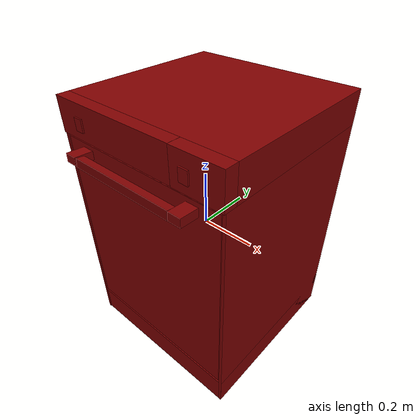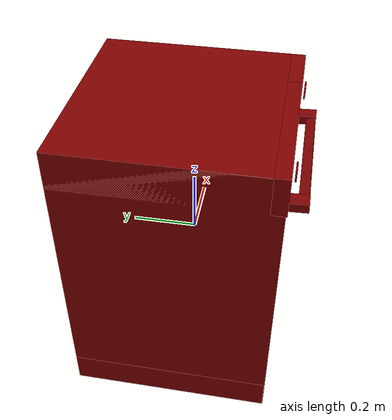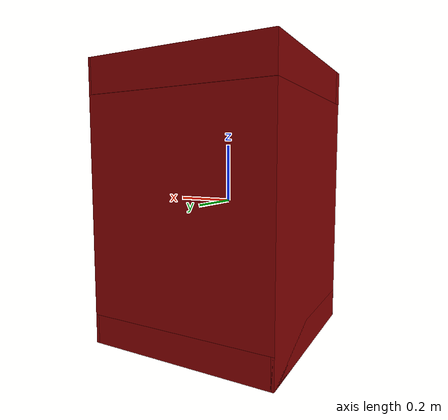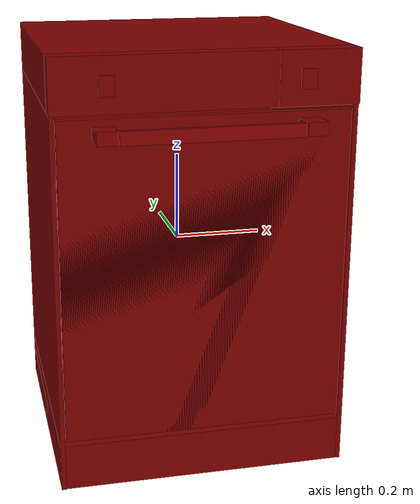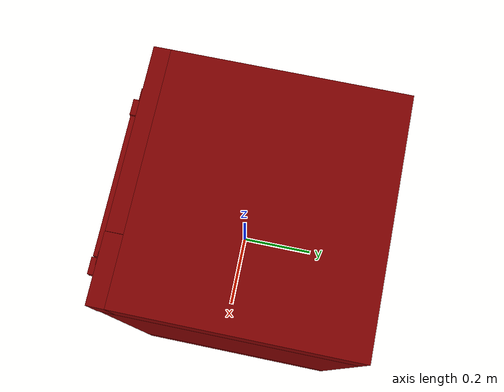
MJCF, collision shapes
<?xml version='1.0' encoding='UTF-8'?>
<mujoco model="model">
  <option timestep="0.002" gravity="0.0 0.0 -9.81"/>
  <compiler angle="radian"/>
  <asset>
    <mesh file="visuals/button_lock.obj" name="button_lock_vis"/>
    <mesh file="visuals/button_power.obj" name="button_power_vis"/>
    <mesh file="visuals/Body001.obj" name="Body001_vis"/>
    <mesh file="visuals/door.obj" name="door_vis"/>
    <mesh file="visuals/rack0.obj" name="rack0_vis"/>
    <mesh file="visuals/rack1.obj" name="rack1_vis"/>
    <texture file="visuals/T_BC001.png" name="Body001_material" type="2d"/>
    <material name="Body001_material" rgba="1 1 1 1.0" texture="Body001_material" shininess="0.6073972582817078" specular="1"/>
    <texture file="visuals/T_BC001.png" name="button_lock_material" type="2d"/>
    <material name="button_lock_material" rgba="1 1 1 1.0" texture="button_lock_material" shininess="0.6073972582817078" specular="0.3103448502657381"/>
    <texture file="visuals/T_BC001.png" name="button_power_material" type="2d"/>
    <material name="button_power_material" rgba="1 1 1 1.0" texture="button_power_material" shininess="0.6073972582817078" specular="0.3103448502657381"/>
    <texture file="visuals/T_BC001.png" name="door_material" type="2d"/>
    <material name="door_material" rgba="1 1 1 1.0" texture="door_material" shininess="0.6073972582817078" specular="1"/>
    <texture file="visuals/T_BC001.png" name="rack0_material" type="2d"/>
    <material name="rack0_material" rgba="1 1 1 1.0" texture="rack0_material" shininess="0.6073972582817078" specular="2"/>
    <texture file="visuals/T_BC001.png" name="rack1_material" type="2d"/>
    <material name="rack1_material" rgba="1 1 1 1.0" texture="rack1_material" shininess="0.6073972582817078" specular="2"/>
  </asset>
  <default>
    <default class="visual">
      <geom conaffinity="0" contype="0" group="1" type="mesh"/>
    </default>
    <default class="collision">
      <geom group="0" rgba="0.5 0 0 0.5"/>
    </default>
    <default class="spawn">
      <geom group="0" rgba="1 1 1 0.5" contype="0" conaffinity="0"/>
      <site group="0" rgba="1 1 1 0.5"/>
    </default>
    <default class="region">
      <geom group="1" conaffinity="0" contype="0" rgba="0 1 0 0"/>
    </default>
  </default>
  <worldbody>
    <body>
      <body name="object">
        <geom mesh="Body001_vis" type="mesh" solimp="0.998 0.998 0.001" solref="0.001 1" friction="0.95 0.3 0.1" class="visual" material="Body001_material"/>
        <geom class="collision" type="box" pos="0.3195469081401825 0.03049352578818798 -0.0008652372634969652" size="0.005452887155115604 0.3193228244781494 0.4755246639251709" quat="1.0 0.0 0.0 0.0"/>
        <geom class="collision" type="box" pos="-0.3197232484817505 0.02959943749010563 -0.0008680850733071566" size="0.005276618991047144 0.3202167749404907 0.4755217730998993" quat="1.0 0.0 0.0 0.0"/>
        <geom class="collision" type="box" pos="-3.842194473691052e-08 0.049297429621219635 0.417580246925354" size="0.3249998986721039 0.3005189597606659 0.05880957096815109" quat="1.0 0.0 0.0 0.0"/>
        <geom class="collision" type="box" pos="0.23768563568592072 -0.2731601893901825 0.41758012771606445" size="0.08731427043676376 0.022130848839879036 0.05880975350737572" quat="1.0 0.0 0.0 0.0"/>
        <geom class="collision" type="box" pos="-0.0875551849603653 -0.272649884223938 0.4175802767276764" size="0.23744478821754456 0.021620552986860275 0.05880960077047348" quat="1.0 0.0 0.0 0.0"/>
        <geom class="collision" type="box" pos="-1.5806563169462606e-08 0.030639229342341423 -0.42419469356536865" size="0.3249998688697815 0.3191770315170288 0.052195172756910324" quat="1.0 0.0 0.0 0.0"/>
        <geom class="collision" type="box" pos="-3.550383098627208e-08 0.30669325590133667 -0.0094219371676445" size="0.3249998092651367 0.04312392696738243 0.36727073788642883" quat="1.0 0.0 0.0 0.0"/>
        <geom class="collision" type="box" pos="-0.31543615460395813 0.02117220312356949 0.14838247001171112" size="0.006650563795119524 0.19013711810112 0.007469887845218182" quat="1.0 0.0 0.0 0.0"/>
        <geom class="collision" type="box" pos="-0.3152025043964386 0.02117220312356949 -0.17745603621006012" size="0.006381597835570574 0.19013711810112 0.007469888776540756" quat="1.0 0.0 0.0 0.0"/>
        <geom class="collision" type="box" pos="0.31488972902297974 0.02117220312356949 -0.17745603621006012" size="0.006315228529274464 0.19013711810112 0.007469888776540756" quat="1.0 0.0 0.0 0.0"/>
        <geom class="collision" type="box" pos="0.3157113492488861 0.02117220312356949 0.14838247001171112" size="0.007136833854019642 0.19013711810112 0.007469887845218182" quat="1.0 0.0 0.0 0.0"/>
        <body name="button_lock">
          <joint axis="0.0 1.0 0.0" pos="-0.21002115309238434 -0.3024997115135193 0.4177264869213104" limited="true" name="button_lock_joint" range="0.0 0.003" type="slide" damping="1" frictionloss="1" armature=".01" stiffness="4" springref="-1"/>
          <geom mesh="button_lock_vis" type="mesh" solimp="0.998 0.998 0.001" solref="0.001 1" friction="0.95 0.3 0.1" class="visual" material="button_lock_material"/>
          <geom class="collision" type="box" pos="-0.21002115309238434 -0.3045172095298767 0.4174860715866089" size="0.016192251816391945 0.0023901311215013266 0.021154846996068954" quat="1.0 0.0 0.0 0.0"/>
        </body>
        <body name="button_power">
          <joint axis="0.0 1.0 0.0" pos="0.2092234045267105 -0.3024997115135193 0.4177264869213104" limited="true" name="button_power_joint" range="0.0 0.003" type="slide" damping="1" frictionloss="1" armature=".01" stiffness="4" springref="-1"/>
          <geom mesh="button_power_vis" type="mesh" solimp="0.998 0.998 0.001" solref="0.001 1" friction="0.95 0.3 0.1" class="visual" material="button_power_material"/>
          <geom class="collision" type="box" pos="0.2092234045267105 -0.3045172095298767 0.4174860715866089" size="0.016192251816391945 0.0023901311215013266 0.021154848858714104" quat="1.0 0.0 0.0 0.0"/>
        </body>
        <body name="door">
          <joint axis="1.0 0.0 0.0" pos="-9.046045306604356e-05 -0.2885375516489148 -0.3612375552766025" limited="true" name="door_joint" range="0.0 0.6235987755982988" type="hinge" damping="1" frictionloss="10" armature="1" stiffness="2"/>
          <geom mesh="door_vis" type="mesh" solimp="0.998 0.998 0.001" solref="0.001 1" friction="0.95 0.3 0.1" class="visual" material="door_material"/>
          <geom class="collision" type="box" pos="-9.046045306604356e-05 -0.2785291373729706 -0.006001144181936979" size="0.3114652633666992 0.010008400306105614 0.3552364110946655" quat="1.0 0.0 0.0 0.0"/>
          <geom class="collision" type="box" pos="-0.000379952194634825 -0.334861159324646 0.31872302293777466" size="0.19219963252544403 0.014004869386553764 0.014333692379295826" quat="0.9979648590087891 -0.06376658380031586 1.4159025907360036e-17 -2.6513886195414377e-25" name="door_handle_main"/>
          <geom class="collision" type="box" pos="-0.21679207682609558 -0.31781715154647827 0.32058584690093994" size="0.014369867742061615 0.03252572938799858 0.022114161401987076" quat="0.013899299316108227 0.7069703340530396 -0.015007845126092434 -0.7069473266601562"/>
          <geom class="collision" type="box" pos="0.2169979065656662 -0.31771621108055115 0.32061833143234253" size="0.014333294704556465 0.032423343509435654 0.022083843126893044" quat="0.013899299316108227 0.7069703340530396 -0.015007845126092434 -0.7069473266601562"/>
          <geom class="collision" type="box" pos="-9.046045306604356e-05 -0.2853344976902008 -0.006001144181936979" size="0.31146734952926636 0.0032030539587140083 0.3552364110946655" quat="1.0 0.0 0.0 0.0" name="door_main"/>
        </body>
        <body name="rack0">
          <geom class="region" name="reg_rack0" type="box" pos="0.002743169665336609 -0.004573509097099304 -0.10494159907102585" size="0.25864910876750946 0.21195538139343262 0.15367647057771683"/>
          <joint axis="0.0 -1.0 0.0" pos="-0.0006143888458609581 -0.006038481369614601 -0.18971765041351318" limited="true" name="rack0_joint" range="0.0 0.081" type="slide" damping="1" frictionloss="1" armature=".01" stiffness="0.05"/>
          <geom mesh="rack0_vis" type="mesh" solimp="0.998 0.998 0.001" solref="0.001 1" friction="0.95 0.3 0.1" class="visual" material="rack0_material"/>
          <geom class="collision" type="box" pos="0.0016660188557580113 0.020785540342330933 -0.26642823219299316" size="0.29012924432754517 0.21466881036758423 0.003376383800059557" quat="1.0 0.0 0.0 0.0"/>
          <geom class="collision" type="box" pos="-0.2863785922527313 0.020667903125286102 -0.2529175877571106" size="0.005731178447604179 0.21478644013404846 0.016833750531077385" quat="1.0 0.0 0.0 0.0"/>
          <geom class="collision" type="box" pos="-0.29412487149238586 0.020667903125286102 -0.22640131413936615" size="0.016833651810884476 0.21478644013404846 0.005645910743623972" quat="0.4823550879955292 -5.884757925400663e-08 -0.8759757876396179 -8.529080730568239e-08"/>
          <geom class="collision" type="box" pos="-0.2998568117618561 0.02111320197582245 -0.16304901242256165" size="0.006188823841512203 0.2143411785364151 0.052745699882507324" quat="1.0 0.0 0.0 0.0"/>
          <geom class="collision" type="box" pos="-0.3085080683231354 0.02140076458454132 -0.18778908252716064" size="0.002633859170600772 0.1918901950120926 0.0023234589025378227" quat="1.0 0.0 0.0 0.0"/>
          <geom class="collision" type="box" pos="-0.3085080683231354 0.02140076458454132 -0.16727127134799957" size="0.002633859170600772 0.1918901950120926 0.0023234582040458918" quat="1.0 0.0 0.0 0.0"/>
          <geom class="collision" type="box" pos="0.000577675411477685 -0.03990449011325836 -0.26642823219299316" size="0.20991303026676178 0.21466881036758423 0.003376383800059557" quat="1.0 0.0 0.0 0.0"/>
          <geom class="collision" type="box" pos="-0.2778160572052002 -0.21964961290359497 -0.162726029753685" size="0.05306830257177353 0.039873234927654266 0.0033764373511075974" quat="0.6597546935081482 0.25440871715545654 -0.6597546339035034 0.25440868735313416"/>
          <geom class="collision" type="box" pos="-0.0009126450167968869 -0.24716416001319885 -0.18804959952831268" size="0.2089340090751648 0.006340378429740667 0.0801505297422409" quat="1.0 0.0 0.0 0.0"/>
          <geom class="collision" type="box" pos="-0.21426835656166077 -0.24949386715888977 -0.162726029753685" size="0.0398864820599556 0.003536420641466975 0.05306831747293472" quat="1.0 0.0 0.0 0.0"/>
          <geom class="collision" type="box" pos="-0.2671022117137909 -0.2161390334367752 -0.1873312145471573" size="0.01805032417178154 0.04534149542450905 0.0033764371182769537" quat="0.6498845815658569 0.2786577641963959 -0.6498844027519226 0.2786576747894287"/>
          <geom class="collision" type="box" pos="-0.3047977089881897 0.02111320197582245 -0.11315758526325226" size="0.005780012346804142 0.2143411785364151 0.0037815244868397713" quat="1.0 0.0 0.0 0.0"/>
          <geom class="collision" type="box" pos="-0.19273234903812408 0.23852188885211945 -0.11315757036209106" size="0.11591189354658127 0.005780050065368414 0.0037815424147993326" quat="1.0 0.0 0.0 0.0"/>
          <geom class="collision" type="box" pos="0.00275445100851357 0.21388477087020874 -0.11315755546092987" size="0.05314372479915619 0.0057800281792879105 0.0037815228570252657" quat="1.0 0.0 0.0 0.0"/>
          <geom class="collision" type="box" pos="-0.06510243564844131 0.22636380791664124 -0.11315755546092987" size="0.0037815060932189226 0.021321946755051613 0.005779982544481754" quat="0.6408565044403076 0.29883623123168945 -0.6408563256263733 0.2988361418247223"/>
          <geom class="collision" type="box" pos="0.06482300907373428 0.22507742047309875 -0.11315755546092987" size="0.0037815060932189226 0.021321943029761314 0.005779982544481754" quat="0.298836350440979 0.6408564448356628 -0.29883626103401184 0.6408562660217285"/>
          <geom class="collision" type="box" pos="0.19270308315753937 0.23852179944515228 -0.11315764486789703" size="0.11591189354658127 0.005780045408755541 0.0037815424147993326" quat="1.0 0.0 0.0 0.0"/>
          <geom class="collision" type="box" pos="0.30326780676841736 0.02111320197582245 -0.11315758526325226" size="0.005780053324997425 0.2143411785364151 0.003781520063057542" quat="1.0 0.0 0.0 0.0"/>
          <geom class="collision" type="box" pos="0.3073371648788452 0.02140076458454132 -0.16727127134799957" size="0.002992909401655197 0.1918901950120926 0.002323453314602375" quat="1.0 0.0 0.0 0.0"/>
          <geom class="collision" type="box" pos="0.3073371648788452 0.02140076458454132 -0.18778908252716064" size="0.002992909401655197 0.1918901950120926 0.0023234528489410877" quat="1.0 0.0 0.0 0.0"/>
          <geom class="collision" type="box" pos="0.29832690954208374 0.02111320197582245 -0.16304901242256165" size="0.006188864819705486 0.2143411785364151 0.05274546518921852" quat="1.0 0.0 0.0 0.0"/>
          <geom class="collision" type="box" pos="0.2925949692726135 0.020667903125286102 -0.22640131413936615" size="0.016833651810884476 0.21478644013404846 0.005645910277962685" quat="1.44719962236195e-07 0.48235517740249634 1.7913136218794534e-07 -0.8759757280349731"/>
          <geom class="collision" type="box" pos="0.284848690032959 0.020667903125286102 -0.2529175877571106" size="0.0057312194257974625 0.21478644013404846 0.016833683475852013" quat="1.0 0.0 0.0 0.0"/>
          <geom class="collision" type="box" pos="0.2706979513168335 -0.2174314558506012 -0.18809129297733307" size="0.01805032417178154 0.04534149914979935 0.0033764373511075974" quat="0.24159552156925201 -0.6645538210868835 0.24159541726112366 0.6645535826683044"/>
          <geom class="collision" type="box" pos="0.2153654247522354 -0.24949386715888977 -0.162726029753685" size="0.0398864820599556 0.0035363936331123114 0.05306831747293472" quat="1.0 0.0 0.0 0.0"/>
          <geom class="collision" type="box" pos="0.27891311049461365 -0.21964961290359497 -0.162726029753685" size="0.05306830257177353 0.039873234927654266 0.0033764373511075974" quat="0.25440868735313416 -0.6597546935081482 0.25440865755081177 0.6597546339035034"/>
          <geom class="collision" type="box" pos="0.27146536111831665 -0.21916376054286957 -0.11315758526325226" size="0.0037815060932189226 0.04157046601176262 0.005780006293207407" quat="0.23578761518001556 -0.6666365265846252 0.23578760027885437 0.6666364669799805"/>
          <geom class="collision" type="box" pos="-0.19533056020736694 0.2367458939552307 -0.1882169395685196" size="0.11310506612062454 0.006188844796270132 0.07550069689750671" quat="1.0 0.0 0.0 0.0"/>
          <geom class="collision" type="box" pos="0.0023002009838819504 0.2143627107143402 -0.1882169395685196" size="0.05345770716667175 0.006188835483044386 0.07550068944692612" quat="1.0 0.0 0.0 0.0"/>
          <geom class="collision" type="box" pos="-0.06510329246520996 0.22687402367591858 -0.1882169395685196" size="0.07550067454576492 0.021698355674743652 0.006188809871673584" quat="0.6344220042228699 0.31226423382759094 -0.634421706199646 0.312264084815979"/>
          <geom class="collision" type="box" pos="0.07047451287508011 0.22687402367591858 -0.1882169395685196" size="0.07550067454576492 0.021698355674743652 0.006188809871673584" quat="0.3122642934322357 -0.6344218850135803 0.31226423382759094 0.6344217658042908"/>
          <geom class="collision" type="box" pos="0.19220715761184692 0.2367458939552307 -0.1882169395685196" size="0.10461044311523438 0.006188805215060711 0.07550068944692612" quat="1.0 0.0 0.0 0.0"/>
          <geom class="collision" type="box" pos="-0.0003313516790512949 0.13536913692951202 -0.22561310231685638" size="0.0395793579518795 0.20281746983528137 0.0017566158203408122" quat="0.43982160091400146 0.5536758899688721 -0.5536760687828064 0.4398213028907776"/>
          <geom class="collision" type="box" pos="-0.0003313519700895995 0.047370873391628265 -0.22919343411922455" size="0.03777705132961273 0.20281746983528137 0.0017566158203408122" quat="0.6009700298309326 0.37260565161705017 -0.37260550260543823 0.6009702086448669"/>
          <geom class="collision" type="box" pos="-0.00033135199919342995 -0.07459119707345963 -0.22931192815303802" size="0.03777705132961273 0.20281746983528137 0.0017566158203408122" quat="0.6009700298309326 0.37260565161705017 -0.37260550260543823 0.6009702086448669"/>
          <geom class="collision" type="box" pos="-0.00033135199919342995 -0.2023201882839203 -0.22906719148159027" size="0.03777705132961273 0.20281746983528137 0.0017566158203408122" quat="0.3746052086353302 0.599725604057312 -0.5997262597084045 0.3746044933795929"/>
        </body>
        <body name="rack1">
          <geom class="region" name="reg_rack1" type="box" pos="0.0027431845664978027 -0.004573509097099304 0.2106955349445343" size="0.25864912366867066 0.21195538139343262 0.14287276363372803"/>
          <joint axis="0.0 -1.0 0.0" pos="-0.0006143888458609581 -0.006038481369614601 0.11613881587982178" limited="true" name="rack1_joint" range="0.0 0.258" type="slide" damping="1" frictionloss="1" armature=".01" stiffness="0.05"/>
          <geom mesh="rack1_vis" type="mesh" solimp="0.998 0.998 0.001" solref="0.001 1" friction="0.95 0.3 0.1" class="visual" material="rack1_material"/>
          <geom class="collision" type="box" pos="0.0016660188557580113 0.020785540342330933 0.05959241837263107" size="0.29013076424598694 0.21466881036758423 0.003376383800059557" quat="1.0 0.0 0.0 0.0"/>
          <geom class="collision" type="box" pos="-0.2863785922527313 0.020667903125286102 0.07310310006141663" size="0.005731178447604179 0.21478644013404846 0.016833845525979996" quat="1.0 0.0 0.0 0.0"/>
          <geom class="collision" type="box" pos="-0.29412487149238586 0.020667901262640953 0.09961934387683868" size="0.016833651810884476 0.21478644013404846 0.005645910277962685" quat="0.4823550879955292 -5.884757925400663e-08 -0.8759757876396179 -8.529080730568239e-08"/>
          <geom class="collision" type="box" pos="-0.2998568117618561 0.02111320197582245 0.162971630692482" size="0.006188823841512203 0.2143411785364151 0.05274607613682747" quat="1.0 0.0 0.0 0.0"/>
          <geom class="collision" type="box" pos="-0.3085080683231354 0.02140076458454132 0.138231560587883" size="0.002633859170600772 0.1918901950120926 0.002323470078408718" quat="1.0 0.0 0.0 0.0"/>
          <geom class="collision" type="box" pos="-0.3085080683231354 0.02140076458454132 0.15874938666820526" size="0.002633859170600772 0.1918901950120926 0.002323470078408718" quat="1.0 0.0 0.0 0.0"/>
          <geom class="collision" type="box" pos="0.000577675411477685 -0.03990449011325836 0.05959241837263107" size="0.20991455018520355 0.21466881036758423 0.003376383800059557" quat="1.0 0.0 0.0 0.0"/>
          <geom class="collision" type="box" pos="-0.2778160572052002 -0.21964961290359497 0.16329459846019745" size="0.05306830257177353 0.039873234927654266 0.0033764373511075974" quat="0.6597546935081482 0.25440871715545654 -0.6597546339035034 0.25440868735313416"/>
          <geom class="collision" type="box" pos="-0.0009126450167968869 -0.24716416001319885 0.13797104358673096" size="0.2089340090751648 0.006340425927191973 0.0801505297422409" quat="1.0 0.0 0.0 0.0"/>
          <geom class="collision" type="box" pos="-0.21426835656166077 -0.24949386715888977 0.16329459846019745" size="0.0398864820599556 0.0035364441573619843 0.05306831747293472" quat="1.0 0.0 0.0 0.0"/>
          <geom class="collision" type="box" pos="-0.2671022117137909 -0.2161390334367752 0.13868942856788635" size="0.01805032603442669 0.04534149542450905 0.0033764371182769537" quat="0.6498845815658569 0.2786577641963959 -0.6498844027519226 0.2786576747894287"/>
          <geom class="collision" type="box" pos="-0.3047977089881897 0.02111320197582245 0.21286305785179138" size="0.005780012346804142 0.2143411785364151 0.0037815477699041367" quat="1.0 0.0 0.0 0.0"/>
          <geom class="collision" type="box" pos="-0.19273234903812408 0.23852188885211945 0.21286307275295258" size="0.11591189354658127 0.005780097097158432 0.0037815419491380453" quat="1.0 0.0 0.0 0.0"/>
          <geom class="collision" type="box" pos="0.00275445100851357 0.21388477087020874 0.21286308765411377" size="0.05314372479915619 0.005780075676739216 0.003781522624194622" quat="1.0 0.0 0.0 0.0"/>
          <geom class="collision" type="box" pos="-0.06510243564844131 0.22636380791664124 0.21286308765411377" size="0.0037815060932189226 0.021321946755051613 0.005779982544481754" quat="0.6408565044403076 0.29883623123168945 -0.6408563256263733 0.2988361418247223"/>
          <geom class="collision" type="box" pos="0.06482300907373428 0.22507742047309875 0.21286308765411377" size="0.0037815060932189226 0.021321943029761314 0.005779982544481754" quat="0.298836350440979 0.6408564448356628 -0.29883626103401184 0.6408562660217285"/>
          <geom class="collision" type="box" pos="0.19270308315753937 0.23852179944515228 0.2128629982471466" size="0.11591189354658127 0.005780092440545559 0.0037815419491380453" quat="1.0 0.0 0.0 0.0"/>
          <geom class="collision" type="box" pos="0.30326780676841736 0.02111320197582245 0.21286305785179138" size="0.005780053324997425 0.2143411785364151 0.0037815431132912636" quat="1.0 0.0 0.0 0.0"/>
          <geom class="collision" type="box" pos="0.3073371648788452 0.02140076458454132 0.15874938666820526" size="0.002992909401655197 0.1918901950120926 0.0023234656546264887" quat="1.0 0.0 0.0 0.0"/>
          <geom class="collision" type="box" pos="0.3073371648788452 0.02140076458454132 0.138231560587883" size="0.002992909401655197 0.1918901950120926 0.002323464024811983" quat="1.0 0.0 0.0 0.0"/>
          <geom class="collision" type="box" pos="0.29832690954208374 0.02111320197582245 0.162971630692482" size="0.006188864819705486 0.2143411785364151 0.052745845168828964" quat="1.0 0.0 0.0 0.0"/>
          <geom class="collision" type="box" pos="0.2925949692726135 0.020667899399995804 0.09961934387683868" size="0.016833651810884476 0.21478644013404846 0.005645910277962685" quat="1.44719962236195e-07 0.48235517740249634 1.7913136218794534e-07 -0.8759757280349731"/>
          <geom class="collision" type="box" pos="0.284848690032959 0.020667903125286102 0.07310310006141663" size="0.0057312194257974625 0.21478644013404846 0.016833778470754623" quat="1.0 0.0 0.0 0.0"/>
          <geom class="collision" type="box" pos="0.2706979513168335 -0.2174314558506012 0.13792935013771057" size="0.01805032230913639 0.04534149914979935 0.0033764373511075974" quat="0.24159552156925201 -0.6645538210868835 0.24159541726112366 0.6645535826683044"/>
          <geom class="collision" type="box" pos="0.2153654247522354 -0.24949386715888977 0.16329459846019745" size="0.0398864820599556 0.0035364171490073204 0.05306831747293472" quat="1.0 0.0 0.0 0.0"/>
          <geom class="collision" type="box" pos="0.27891311049461365 -0.21964961290359497 0.16329459846019745" size="0.05306830257177353 0.039873234927654266 0.0033764373511075974" quat="0.25440868735313416 -0.6597546935081482 0.25440865755081177 0.6597546339035034"/>
          <geom class="collision" type="box" pos="0.27146536111831665 -0.21916376054286957 0.21286305785179138" size="0.0037815060932189226 0.04157046601176262 0.005780006293207407" quat="0.23578761518001556 -0.6666365265846252 0.23578760027885437 0.6666364669799805"/>
          <geom class="collision" type="box" pos="-0.19533056020736694 0.2367458939552307 0.13780368864536285" size="0.11310506612062454 0.00618889182806015 0.07550069689750671" quat="1.0 0.0 0.0 0.0"/>
          <geom class="collision" type="box" pos="0.0023002009838819504 0.2143627107143402 0.13780370354652405" size="0.05345770716667175 0.006188882514834404 0.07550068944692612" quat="1.0 0.0 0.0 0.0"/>
          <geom class="collision" type="box" pos="-0.06510329246520996 0.22687402367591858 0.13780370354652405" size="0.07550067454576492 0.021698355674743652 0.006188809871673584" quat="0.6344220042228699 0.31226423382759094 -0.634421706199646 0.312264084815979"/>
          <geom class="collision" type="box" pos="0.07047451287508011 0.22687402367591858 0.13780370354652405" size="0.07550067454576492 0.021698355674743652 0.006188809871673584" quat="0.3122642934322357 -0.6344218850135803 0.31226423382759094 0.6344217658042908"/>
          <geom class="collision" type="box" pos="0.19220715761184692 0.2367458939552307 0.13780370354652405" size="0.10461044311523438 0.006188852246850729 0.07550068944692612" quat="1.0 0.0 0.0 0.0"/>
          <geom class="collision" type="box" pos="-0.0003313481865916401 0.13536913692951202 0.10040752589702606" size="0.0395793579518795 0.20281746983528137 0.0017566155875101686" quat="0.43982160091400146 0.5536758899688721 -0.5536760687828064 0.4398213028907776"/>
          <geom class="collision" type="box" pos="-0.0003313510387670249 0.047370873391628265 0.09682722389698029" size="0.03777705132961273 0.20281746983528137 0.0017566161695867777" quat="0.6009700298309326 0.37260565161705017 -0.37260550260543823 0.6009702086448669"/>
          <geom class="collision" type="box" pos="-0.00033135106787085533 -0.07459119707345963 0.09670871496200562" size="0.03777705132961273 0.20281746983528137 0.0017566161695867777" quat="0.6009700298309326 0.37260565161705017 -0.37260550260543823 0.6009702086448669"/>
          <geom class="collision" type="box" pos="-0.00033134460682049394 -0.2023201882839203 0.09695348143577576" size="0.03777705132961273 0.20281746983528137 0.0017566161695867777" quat="0.3746052086353302 0.599725604057312 -0.5997262597084045 0.3746044933795929"/>
        </body>
        <geom class="region" name="reg_int" type="box" pos="0.00041112303733825684 -0.003377273678779602 -0.007237106561660767" size="0.3038339445590973 0.2607539573907852 0.3604498634338379"/>
        <geom class="region" name="reg_main" type="box" pos="-9.531504474580288e-09 0.024816390126943588 -5.962021987215849e-09" size="0.32599995827674866 0.32599998807907105 0.47738988494873047"/>
      </body>
    </body>
  </worldbody>
  <actuator>
    <motor name="button_lock_joint_actuator" joint="button_lock_joint" gear="0.5"/>
    <motor name="button_power_joint_actuator" joint="button_power_joint" gear="0.5"/>
    <motor name="door_joint_actuator" joint="door_joint" gear="50"/>
    <motor name="rack0_joint_actuator" joint="rack0_joint" gear="50"/>
    <motor name="rack1_joint_actuator" joint="rack1_joint" gear="50"/>
  </actuator>
</mujoco>
